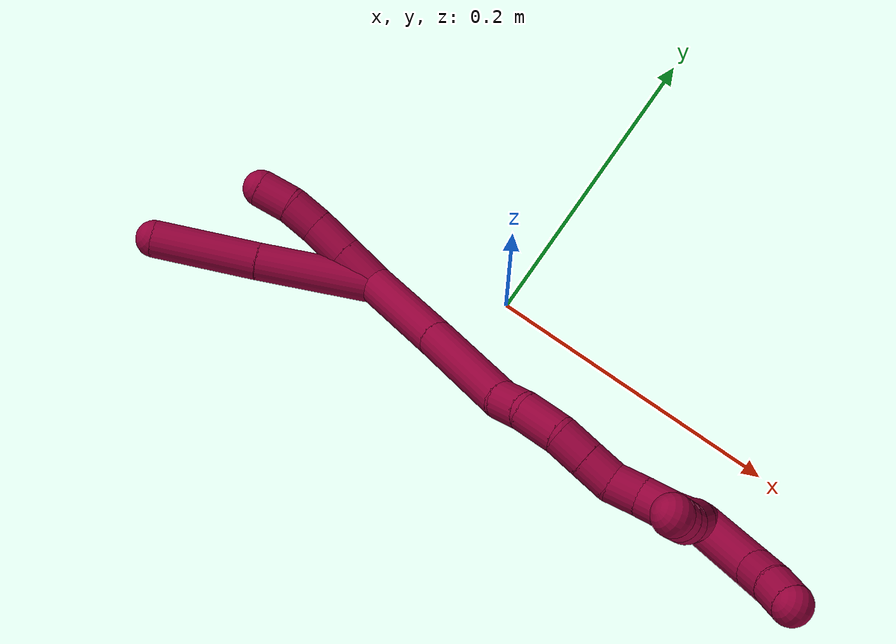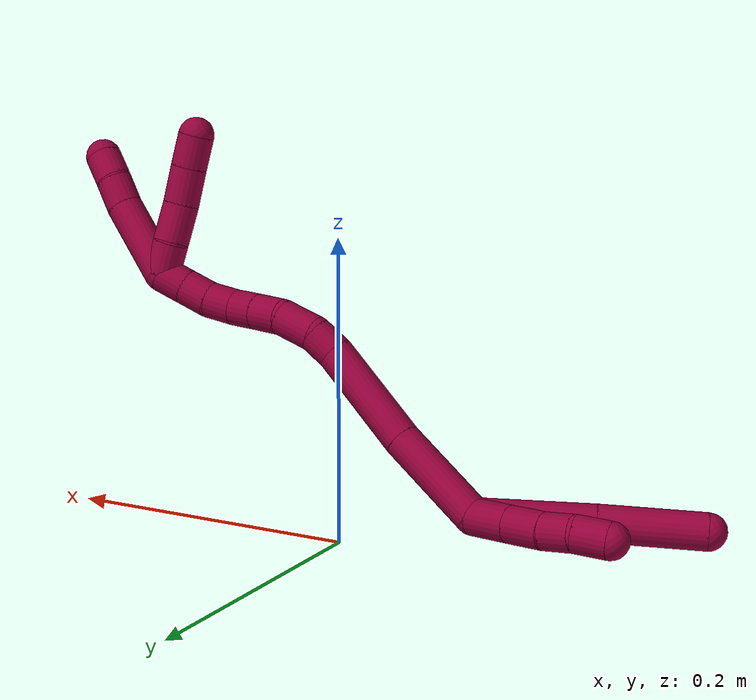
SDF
<sdf version="1.7">
 <world name="default">
  <model name="photoneo_s_sensor">
   <static>1</static>
   <pose>0 0 2 1.57079 1.57079 3.14159</pose>
   <link name="link">
    <inertial><mass>0.1</mass></inertial>
    <sensor name="sensor" type="depth">
     <update_rate>30</update_rate>
     <camera>
      <horizontal_fov>1.22</horizontal_fov>
      <image><width>1920</width><height>1200</height><format>B8G8R8</format></image>
      <clip><near>0.1</near><far>4</far></clip>
      <depth_camera><output>points</output></depth_camera>
     </camera>
     <plugin name="camera_plugin" filename="libgazebo_ros_depth_camera.so">
      <baseline>0.2</baseline>
      <alwaysOn>1</alwaysOn>
      <updateRate>0.0</updateRate>
      <cameraName>camera_ir</cameraName>
      <imageTopicName>/camera/color/image_raw</imageTopicName>
      <cameraInfoTopicName>/camera/color/camera_info</cameraInfoTopicName>
      <depthImageTopicName>/camera/depth/image_raw</depthImageTopicName>
      <depthImageCameraInfoTopicName>/camera/depth/camera_info</depthImageCameraInfoTopicName>
      <pointCloudTopicName>/camera/depth/points</pointCloudTopicName>
      <frameName>fr_optical</frameName>
      <pointCloudCutoff>0.1</pointCloudCutoff>
      <pointCloudCutoffMax>2.0</pointCloudCutoffMax>
      <distortionK1>0</distortionK1>
      <distortionK2>0</distortionK2>
      <distortionK3>0</distortionK3>
      <distortionT1>0</distortionT1>
      <distortionT2>0</distortionT2>
      <CxPrime>0</CxPrime>
      <Cx>0</Cx>
      <Cy>0</Cy>
      <focalLength>0</focalLength>
      <hackBaseline>0</hackBaseline>
     </plugin>
    </sensor>
   </link>
  </model>
  <model name="bin">
   <static>1</static>
   <link name="bottom">
    <collision name="collision-bottom">
     <pose>0 0 -0.01 0 -0 0</pose>
     <geometry><box><size>0.8 0.6 0.02</size></box></geometry>
     <surface>
      <friction><ode><mu>100</mu><mu2>100</mu2></ode></friction>
      <contact><collide_bitmask>65535</collide_bitmask></contact>
     </surface>
    </collision>
   </link>
   <link name="west_wall">
    <collision name="collision-west_wall">
     <pose>-0.41 0 0.1 0 -0 0</pose>
     <geometry><box><size>0.02 0.6 0.2</size></box></geometry>
     <surface>
      <friction><ode><mu>100</mu><mu2>100</mu2></ode></friction>
      <contact><collide_bitmask>65535</collide_bitmask></contact>
     </surface>
    </collision>
   </link>
   <link name="east_wall">
    <collision name="collision-east_wall">
     <pose>0.41 0 0.1 0 -0 0</pose>
     <geometry><box><size>0.02 0.6 0.2</size></box></geometry>
     <surface>
      <friction><ode><mu>100</mu><mu2>100</mu2></ode></friction>
      <contact><collide_bitmask>65535</collide_bitmask></contact>
     </surface>
    </collision>
   </link>
   <link name="south_wall">
    <collision name="collision-south_wall">
     <pose>0 -0.31 0.1 0 -0 0</pose>
     <geometry><box><size>0.8 0.02 0.2</size></box></geometry>
     <surface>
      <friction><ode><mu>100</mu><mu2>100</mu2></ode></friction>
      <contact><collide_bitmask>65535</collide_bitmask></contact>
     </surface>
    </collision>
   </link>
   <link name="north_wall">
    <collision name="collision-north_wall">
     <pose>0 0.31 0.1 0 -0 0</pose>
     <geometry><box><size>0.8 0.02 0.2</size></box></geometry>
     <surface>
      <friction><ode><mu>100</mu><mu2>100</mu2></ode></friction>
      <contact><collide_bitmask>65535</collide_bitmask></contact>
     </surface>
    </collision>
   </link>
  </model>
  <model name="8">
   <static>0</static>
   <link name="8">
    <collision name="collision-cylinder-e_1_2_8">
     <pose>-0.01631 -0.017549 0.031369 0.510047 -0.42597 -0.112641</pose>
     <geometry><cylinder><radius>0.0125</radius><length>0.078942</length></cylinder></geometry>
     <surface>
      <friction><ode><mu>1.16</mu><mu2>1.16</mu2><slip1>0</slip1><slip2>0</slip2></ode></friction>
      <contact><ode><kp>1e+06</kp><kd>1</kd><max_vel>0</max_vel><min_depth>0.001</min_depth></ode></contact>
     </surface>
    </collision>
    <visual name="visual-cylinder-e_1_2_8">
     <pose>-0.01631 -0.017549 0.031369 0.510047 -0.42597 -0.112641</pose>
     <geometry><cylinder><radius>0.0125</radius><length>0.078942</length></cylinder></geometry>
     <material><ambient>0.584314 0 0.227451 1</ambient></material>
    </visual>
    <collision name="collision-cylinder-e_2_8_6">
     <pose>-0.048276 -0.050466 0.090684 0.502805 -0.456361 -0.119147</pose>
     <geometry><cylinder><radius>0.0125</radius><length>0.071058</length></cylinder></geometry>
     <surface>
      <friction><ode><mu>1.16</mu><mu2>1.16</mu2><slip1>0</slip1><slip2>0</slip2></ode></friction>
      <contact><ode><kp>1e+06</kp><kd>1</kd><max_vel>0</max_vel><min_depth>0.001</min_depth></ode></contact>
     </surface>
    </collision>
    <visual name="visual-cylinder-e_2_8_6">
     <pose>-0.048276 -0.050466 0.090684 0.502805 -0.456361 -0.119147</pose>
     <geometry><cylinder><radius>0.0125</radius><length>0.071058</length></cylinder></geometry>
     <material><ambient>0.584314 0 0.227451 1</ambient></material>
    </visual>
    <collision name="collision-cylinder-e_1_2_9">
     <pose>-0.00946 0.001107 0.010947 -0.100771 -0.710124 0.037391</pose>
     <geometry><cylinder><radius>0.0125</radius><length>0.02902</length></cylinder></geometry>
     <surface>
      <friction><ode><mu>1.16</mu><mu2>1.16</mu2><slip1>0</slip1><slip2>0</slip2></ode></friction>
      <contact><ode><kp>1e+06</kp><kd>1</kd><max_vel>0</max_vel><min_depth>0.001</min_depth></ode></contact>
     </surface>
    </collision>
    <visual name="visual-cylinder-e_1_2_9">
     <pose>-0.00946 0.001107 0.010947 -0.100771 -0.710124 0.037391</pose>
     <geometry><cylinder><radius>0.0125</radius><length>0.02902</length></cylinder></geometry>
     <material><ambient>0.584314 0 0.227451 1</ambient></material>
    </visual>
    <collision name="collision-cylinder-e_2_9_10">
     <pose>-0.027359 0.003202 0.031805 -0.099415 -0.702923 0.03648</pose>
     <geometry><cylinder><radius>0.0125</radius><length>0.026111</length></cylinder></geometry>
     <surface>
      <friction><ode><mu>1.16</mu><mu2>1.16</mu2><slip1>0</slip1><slip2>0</slip2></ode></friction>
      <contact><ode><kp>1e+06</kp><kd>1</kd><max_vel>0</max_vel><min_depth>0.001</min_depth></ode></contact>
     </surface>
    </collision>
    <visual name="visual-cylinder-e_2_9_10">
     <pose>-0.027359 0.003202 0.031805 -0.099415 -0.702923 0.03648</pose>
     <geometry><cylinder><radius>0.0125</radius><length>0.026111</length></cylinder></geometry>
     <material><ambient>0.584314 0 0.227451 1</ambient></material>
    </visual>
    <collision name="collision-cylinder-e_3_10_11">
     <pose>-0.041874 0.004527 0.050584 -0.037888 -0.600371 0.011729</pose>
     <geometry><cylinder><radius>0.0125</radius><length>0.021508</length></cylinder></geometry>
     <surface>
      <friction><ode><mu>1.16</mu><mu2>1.16</mu2><slip1>0</slip1><slip2>0</slip2></ode></friction>
      <contact><ode><kp>1e+06</kp><kd>1</kd><max_vel>0</max_vel><min_depth>0.001</min_depth></ode></contact>
     </surface>
    </collision>
    <visual name="visual-cylinder-e_3_10_11">
     <pose>-0.041874 0.004527 0.050584 -0.037888 -0.600371 0.011729</pose>
     <geometry><cylinder><radius>0.0125</radius><length>0.021508</length></cylinder></geometry>
     <material><ambient>0.584314 0 0.227451 1</ambient></material>
    </visual>
    <collision name="collision-cylinder-e_4_11_5">
     <pose>-0.055102 0.002688 0.068425 0.237737 -0.659064 -0.081646</pose>
     <geometry><cylinder><radius>0.0125</radius><length>0.023361</length></cylinder></geometry>
     <surface>
      <friction><ode><mu>1.16</mu><mu2>1.16</mu2><slip1>0</slip1><slip2>0</slip2></ode></friction>
      <contact><ode><kp>1e+06</kp><kd>1</kd><max_vel>0</max_vel><min_depth>0.001</min_depth></ode></contact>
     </surface>
    </collision>
    <visual name="visual-cylinder-e_4_11_5">
     <pose>-0.055102 0.002688 0.068425 0.237737 -0.659064 -0.081646</pose>
     <geometry><cylinder><radius>0.0125</radius><length>0.023361</length></cylinder></geometry>
     <material><ambient>0.584314 0 0.227451 1</ambient></material>
    </visual>
    <collision name="collision-cylinder-e_1_2_12">
     <pose>0.034112 0.005796 -0.010392 -2.63283 1.23517 -2.43975</pose>
     <geometry><cylinder><radius>0.0125</radius><length>0.072255</length></cylinder></geometry>
     <surface>
      <friction><ode><mu>1.16</mu><mu2>1.16</mu2><slip1>0</slip1><slip2>0</slip2></ode></friction>
      <contact><ode><kp>1e+06</kp><kd>1</kd><max_vel>0</max_vel><min_depth>0.001</min_depth></ode></contact>
     </surface>
    </collision>
    <visual name="visual-cylinder-e_1_2_12">
     <pose>0.034112 0.005796 -0.010392 -2.63283 1.23517 -2.43975</pose>
     <geometry><cylinder><radius>0.0125</radius><length>0.072255</length></cylinder></geometry>
     <material><ambient>0.584314 0 0.227451 1</ambient></material>
    </visual>
    <collision name="collision-cylinder-e_2_12_13">
     <pose>0.106034 0.018332 -0.028694 -2.43589 1.30257 -2.24146</pose>
     <geometry><cylinder><radius>0.0125</radius><length>0.078425</length></cylinder></geometry>
     <surface>
      <friction><ode><mu>1.16</mu><mu2>1.16</mu2><slip1>0</slip1><slip2>0</slip2></ode></friction>
      <contact><ode><kp>1e+06</kp><kd>1</kd><max_vel>0</max_vel><min_depth>0.001</min_depth></ode></contact>
     </surface>
    </collision>
    <visual name="visual-cylinder-e_2_12_13">
     <pose>0.106034 0.018332 -0.028694 -2.43589 1.30257 -2.24146</pose>
     <geometry><cylinder><radius>0.0125</radius><length>0.078425</length></cylinder></geometry>
     <material><ambient>0.584314 0 0.227451 1</ambient></material>
    </visual>
    <collision name="collision-cylinder-e_3_13_14">
     <pose>0.152704 0.028747 -0.03954 -2.24487 1.08264 -1.792</pose>
     <geometry><cylinder><radius>0.0125</radius><length>0.020063</length></cylinder></geometry>
     <surface>
      <friction><ode><mu>1.16</mu><mu2>1.16</mu2><slip1>0</slip1><slip2>0</slip2></ode></friction>
      <contact><ode><kp>1e+06</kp><kd>1</kd><max_vel>0</max_vel><min_depth>0.001</min_depth></ode></contact>
     </surface>
    </collision>
    <visual name="visual-cylinder-e_3_13_14">
     <pose>0.152704 0.028747 -0.03954 -2.24487 1.08264 -1.792</pose>
     <geometry><cylinder><radius>0.0125</radius><length>0.020063</length></cylinder></geometry>
     <material><ambient>0.584314 0 0.227451 1</ambient></material>
    </visual>
    <collision name="collision-cylinder-e_4_14_15">
     <pose>0.172543 0.035008 -0.050155 -2.8169 0.935116 -2.51422</pose>
     <geometry><cylinder><radius>0.0125</radius><length>0.02729</length></cylinder></geometry>
     <surface>
      <friction><ode><mu>1.16</mu><mu2>1.16</mu2><slip1>0</slip1><slip2>0</slip2></ode></friction>
      <contact><ode><kp>1e+06</kp><kd>1</kd><max_vel>0</max_vel><min_depth>0.001</min_depth></ode></contact>
     </surface>
    </collision>
    <visual name="visual-cylinder-e_4_14_15">
     <pose>0.172543 0.035008 -0.050155 -2.8169 0.935116 -2.51422</pose>
     <geometry><cylinder><radius>0.0125</radius><length>0.02729</length></cylinder></geometry>
     <material><ambient>0.584314 0 0.227451 1</ambient></material>
    </visual>
    <collision name="collision-cylinder-e_5_15_16">
     <pose>0.190949 0.037377 -0.065706 3.11424 0.756045 3.07273</pose>
     <geometry><cylinder><radius>0.0125</radius><length>0.02165</length></cylinder></geometry>
     <surface>
      <friction><ode><mu>1.16</mu><mu2>1.16</mu2><slip1>0</slip1><slip2>0</slip2></ode></friction>
      <contact><ode><kp>1e+06</kp><kd>1</kd><max_vel>0</max_vel><min_depth>0.001</min_depth></ode></contact>
     </surface>
    </collision>
    <visual name="visual-cylinder-e_5_15_16">
     <pose>0.190949 0.037377 -0.065706 3.11424 0.756045 3.07273</pose>
     <geometry><cylinder><radius>0.0125</radius><length>0.02165</length></cylinder></geometry>
     <material><ambient>0.584314 0 0.227451 1</ambient></material>
    </visual>
    <collision name="collision-cylinder-e_6_16_17">
     <pose>0.205176 0.036955 -0.081014 3.11384 0.740638 3.07014</pose>
     <geometry><cylinder><radius>0.0125</radius><length>0.020156</length></cylinder></geometry>
     <surface>
      <friction><ode><mu>1.16</mu><mu2>1.16</mu2><slip1>0</slip1><slip2>0</slip2></ode></friction>
      <contact><ode><kp>1e+06</kp><kd>1</kd><max_vel>0</max_vel><min_depth>0.001</min_depth></ode></contact>
     </surface>
    </collision>
    <visual name="visual-cylinder-e_6_16_17">
     <pose>0.205176 0.036955 -0.081014 3.11384 0.740638 3.07014</pose>
     <geometry><cylinder><radius>0.0125</radius><length>0.020156</length></cylinder></geometry>
     <material><ambient>0.584314 0 0.227451 1</ambient></material>
    </visual>
    <collision name="collision-cylinder-e_7_17_18">
     <pose>0.218719 0.039644 -0.095335 -2.74349 0.734244 -2.17539</pose>
     <geometry><cylinder><radius>0.0125</radius><length>0.020126</length></cylinder></geometry>
     <surface>
      <friction><ode><mu>1.16</mu><mu2>1.16</mu2><slip1>0</slip1><slip2>0</slip2></ode></friction>
      <contact><ode><kp>1e+06</kp><kd>1</kd><max_vel>0</max_vel><min_depth>0.001</min_depth></ode></contact>
     </surface>
    </collision>
    <visual name="visual-cylinder-e_7_17_18">
     <pose>0.218719 0.039644 -0.095335 -2.74349 0.734244 -2.17539</pose>
     <geometry><cylinder><radius>0.0125</radius><length>0.020126</length></cylinder></geometry>
     <material><ambient>0.584314 0 0.227451 1</ambient></material>
    </visual>
    <collision name="collision-cylinder-e_8_18_19">
     <pose>0.233371 0.045631 -0.107529 -2.61442 0.910525 -2.13401</pose>
     <geometry><cylinder><radius>0.0125</radius><length>0.02003</length></cylinder></geometry>
     <surface>
      <friction><ode><mu>1.16</mu><mu2>1.16</mu2><slip1>0</slip1><slip2>0</slip2></ode></friction>
      <contact><ode><kp>1e+06</kp><kd>1</kd><max_vel>0</max_vel><min_depth>0.001</min_depth></ode></contact>
     </surface>
    </collision>
    <visual name="visual-cylinder-e_8_18_19">
     <pose>0.233371 0.045631 -0.107529 -2.61442 0.910525 -2.13401</pose>
     <geometry><cylinder><radius>0.0125</radius><length>0.02003</length></cylinder></geometry>
     <material><ambient>0.584314 0 0.227451 1</ambient></material>
    </visual>
    <collision name="collision-cylinder-e_9_19_1">
     <pose>0.24894 0.052687 -0.117904 -2.47731 0.872105 -1.86717</pose>
     <geometry><cylinder><radius>0.0125</radius><length>0.020005</length></cylinder></geometry>
     <surface>
      <friction><ode><mu>1.16</mu><mu2>1.16</mu2><slip1>0</slip1><slip2>0</slip2></ode></friction>
      <contact><ode><kp>1e+06</kp><kd>1</kd><max_vel>0</max_vel><min_depth>0.001</min_depth></ode></contact>
     </surface>
    </collision>
    <visual name="visual-cylinder-e_9_19_1">
     <pose>0.24894 0.052687 -0.117904 -2.47731 0.872105 -1.86717</pose>
     <geometry><cylinder><radius>0.0125</radius><length>0.020005</length></cylinder></geometry>
     <material><ambient>0.584314 0 0.227451 1</ambient></material>
    </visual>
    <collision name="collision-cylinder-e_1_1_20">
     <pose>0.284935 0.063248 -0.124578 -1.81 1.33569 -1.57501</pose>
     <geometry><cylinder><radius>0.0125</radius><length>0.058275</length></cylinder></geometry>
     <surface>
      <friction><ode><mu>1.16</mu><mu2>1.16</mu2><slip1>0</slip1><slip2>0</slip2></ode></friction>
      <contact><ode><kp>1e+06</kp><kd>1</kd><max_vel>0</max_vel><min_depth>0.001</min_depth></ode></contact>
     </surface>
    </collision>
    <visual name="visual-cylinder-e_1_1_20">
     <pose>0.284935 0.063248 -0.124578 -1.81 1.33569 -1.57501</pose>
     <geometry><cylinder><radius>0.0125</radius><length>0.058275</length></cylinder></geometry>
     <material><ambient>0.584314 0 0.227451 1</ambient></material>
    </visual>
    <collision name="collision-cylinder-e_2_20_21">
     <pose>0.323573 0.072568 -0.125298 -1.25599 1.29943 -1.00816</pose>
     <geometry><cylinder><radius>0.0125</radius><length>0.021387</length></cylinder></geometry>
     <surface>
      <friction><ode><mu>1.16</mu><mu2>1.16</mu2><slip1>0</slip1><slip2>0</slip2></ode></friction>
      <contact><ode><kp>1e+06</kp><kd>1</kd><max_vel>0</max_vel><min_depth>0.001</min_depth></ode></contact>
     </surface>
    </collision>
    <visual name="visual-cylinder-e_2_20_21">
     <pose>0.323573 0.072568 -0.125298 -1.25599 1.29943 -1.00816</pose>
     <geometry><cylinder><radius>0.0125</radius><length>0.021387</length></cylinder></geometry>
     <material><ambient>0.584314 0 0.227451 1</ambient></material>
    </visual>
    <collision name="collision-cylinder-e_3_21_4">
     <pose>0.34392 0.07688 -0.124312 -1.50885 1.41386 -1.35297</pose>
     <geometry><cylinder><radius>0.0125</radius><length>0.020338</length></cylinder></geometry>
     <surface>
      <friction><ode><mu>1.16</mu><mu2>1.16</mu2><slip1>0</slip1><slip2>0</slip2></ode></friction>
      <contact><ode><kp>1e+06</kp><kd>1</kd><max_vel>0</max_vel><min_depth>0.001</min_depth></ode></contact>
     </surface>
    </collision>
    <visual name="visual-cylinder-e_3_21_4">
     <pose>0.34392 0.07688 -0.124312 -1.50885 1.41386 -1.35297</pose>
     <geometry><cylinder><radius>0.0125</radius><length>0.020338</length></cylinder></geometry>
     <material><ambient>0.584314 0 0.227451 1</ambient></material>
    </visual>
    <collision name="collision-cylinder-e_1_1_22">
     <pose>0.263355 0.059704 -0.114132 -0.332341 0.625723 -0.108402</pose>
     <geometry><cylinder><radius>0.0125</radius><length>0.023068</length></cylinder></geometry>
     <surface>
      <friction><ode><mu>1.16</mu><mu2>1.16</mu2><slip1>0</slip1><slip2>0</slip2></ode></friction>
      <contact><ode><kp>1e+06</kp><kd>1</kd><max_vel>0</max_vel><min_depth>0.001</min_depth></ode></contact>
     </surface>
    </collision>
    <visual name="visual-cylinder-e_1_1_22">
     <pose>0.263355 0.059704 -0.114132 -0.332341 0.625723 -0.108402</pose>
     <geometry><cylinder><radius>0.0125</radius><length>0.023068</length></cylinder></geometry>
     <material><ambient>0.584314 0 0.227451 1</ambient></material>
    </visual>
    <collision name="collision-cylinder-e_2_22_23">
     <pose>0.279454 0.064876 -0.09543 -0.211853 0.747026 -0.083291</pose>
     <geometry><cylinder><radius>0.0125</radius><length>0.027504</length></cylinder></geometry>
     <surface>
      <friction><ode><mu>1.16</mu><mu2>1.16</mu2><slip1>0</slip1><slip2>0</slip2></ode></friction>
      <contact><ode><kp>1e+06</kp><kd>1</kd><max_vel>0</max_vel><min_depth>0.001</min_depth></ode></contact>
     </surface>
    </collision>
    <visual name="visual-cylinder-e_2_22_23">
     <pose>0.279454 0.064876 -0.09543 -0.211853 0.747026 -0.083291</pose>
     <geometry><cylinder><radius>0.0125</radius><length>0.027504</length></cylinder></geometry>
     <material><ambient>0.584314 0 0.227451 1</ambient></material>
    </visual>
    <collision name="collision-cylinder-e_3_23_24">
     <pose>0.29713 0.07072 -0.076003 -0.37121 0.681997 -0.133065</pose>
     <geometry><cylinder><radius>0.0125</radius><length>0.026437</length></cylinder></geometry>
     <surface>
      <friction><ode><mu>1.16</mu><mu2>1.16</mu2><slip1>0</slip1><slip2>0</slip2></ode></friction>
      <contact><ode><kp>1e+06</kp><kd>1</kd><max_vel>0</max_vel><min_depth>0.001</min_depth></ode></contact>
     </surface>
    </collision>
    <visual name="visual-cylinder-e_3_23_24">
     <pose>0.29713 0.07072 -0.076003 -0.37121 0.681997 -0.133065</pose>
     <geometry><cylinder><radius>0.0125</radius><length>0.026437</length></cylinder></geometry>
     <material><ambient>0.584314 0 0.227451 1</ambient></material>
    </visual>
    <collision name="collision-cylinder-e_4_24_3">
     <pose>0.312447 0.07774 -0.057926 -0.369546 0.653012 -0.126413</pose>
     <geometry><cylinder><radius>0.0125</radius><length>0.022991</length></cylinder></geometry>
     <surface>
      <friction><ode><mu>1.16</mu><mu2>1.16</mu2><slip1>0</slip1><slip2>0</slip2></ode></friction>
      <contact><ode><kp>1e+06</kp><kd>1</kd><max_vel>0</max_vel><min_depth>0.001</min_depth></ode></contact>
     </surface>
    </collision>
    <visual name="visual-cylinder-e_4_24_3">
     <pose>0.312447 0.07774 -0.057926 -0.369546 0.653012 -0.126413</pose>
     <geometry><cylinder><radius>0.0125</radius><length>0.022991</length></cylinder></geometry>
     <material><ambient>0.584314 0 0.227451 1</ambient></material>
    </visual>
    <collision name="collision-sphere-3">
     <pose>0.319431 0.081038 -0.049413 0 -0 0</pose>
     <geometry><sphere><radius>0.0125</radius></sphere></geometry>
     <surface>
      <friction><ode><mu>1.16</mu><mu2>1.16</mu2><slip1>0</slip1><slip2>0</slip2></ode></friction>
      <contact><ode><kp>1e+06</kp><kd>1</kd><max_vel>0</max_vel><min_depth>0.001</min_depth></ode></contact>
     </surface>
    </collision>
    <visual name="visual-sphere-3">
     <pose>0.319431 0.081038 -0.049413 0 -0 0</pose>
     <geometry><sphere><radius>0.0125</radius></sphere></geometry>
     <material><ambient>0.584314 0 0.227451 1</ambient></material>
    </visual>
    <collision name="collision-sphere-24">
     <pose>0.305462 0.074442 -0.06644 0 -0 0</pose>
     <geometry><sphere><radius>0.0125</radius></sphere></geometry>
     <surface>
      <friction><ode><mu>1.16</mu><mu2>1.16</mu2><slip1>0</slip1><slip2>0</slip2></ode></friction>
      <contact><ode><kp>1e+06</kp><kd>1</kd><max_vel>0</max_vel><min_depth>0.001</min_depth></ode></contact>
     </surface>
    </collision>
    <visual name="visual-sphere-24">
     <pose>0.305462 0.074442 -0.06644 0 -0 0</pose>
     <geometry><sphere><radius>0.0125</radius></sphere></geometry>
     <material><ambient>0.584314 0 0.227451 1</ambient></material>
    </visual>
    <collision name="collision-sphere-23">
     <pose>0.288798 0.066997 -0.085566 0 -0 0</pose>
     <geometry><sphere><radius>0.0125</radius></sphere></geometry>
     <surface>
      <friction><ode><mu>1.16</mu><mu2>1.16</mu2><slip1>0</slip1><slip2>0</slip2></ode></friction>
      <contact><ode><kp>1e+06</kp><kd>1</kd><max_vel>0</max_vel><min_depth>0.001</min_depth></ode></contact>
     </surface>
    </collision>
    <visual name="visual-sphere-23">
     <pose>0.288798 0.066997 -0.085566 0 -0 0</pose>
     <geometry><sphere><radius>0.0125</radius></sphere></geometry>
     <material><ambient>0.584314 0 0.227451 1</ambient></material>
    </visual>
    <collision name="collision-sphere-22">
     <pose>0.27011 0.062754 -0.105295 0 -0 0</pose>
     <geometry><sphere><radius>0.0125</radius></sphere></geometry>
     <surface>
      <friction><ode><mu>1.16</mu><mu2>1.16</mu2><slip1>0</slip1><slip2>0</slip2></ode></friction>
      <contact><ode><kp>1e+06</kp><kd>1</kd><max_vel>0</max_vel><min_depth>0.001</min_depth></ode></contact>
     </surface>
    </collision>
    <visual name="visual-sphere-22">
     <pose>0.27011 0.062754 -0.105295 0 -0 0</pose>
     <geometry><sphere><radius>0.0125</radius></sphere></geometry>
     <material><ambient>0.584314 0 0.227451 1</ambient></material>
    </visual>
    <collision name="collision-sphere-4">
     <pose>0.353964 0.078466 -0.124214 0 -0 0</pose>
     <geometry><sphere><radius>0.0125</radius></sphere></geometry>
     <surface>
      <friction><ode><mu>1.16</mu><mu2>1.16</mu2><slip1>0</slip1><slip2>0</slip2></ode></friction>
      <contact><ode><kp>1e+06</kp><kd>1</kd><max_vel>0</max_vel><min_depth>0.001</min_depth></ode></contact>
     </surface>
    </collision>
    <visual name="visual-sphere-4">
     <pose>0.353964 0.078466 -0.124214 0 -0 0</pose>
     <geometry><sphere><radius>0.0125</radius></sphere></geometry>
     <material><ambient>0.584314 0 0.227451 1</ambient></material>
    </visual>
    <collision name="collision-sphere-21">
     <pose>0.333876 0.075293 -0.124411 0 -0 0</pose>
     <geometry><sphere><radius>0.0125</radius></sphere></geometry>
     <surface>
      <friction><ode><mu>1.16</mu><mu2>1.16</mu2><slip1>0</slip1><slip2>0</slip2></ode></friction>
      <contact><ode><kp>1e+06</kp><kd>1</kd><max_vel>0</max_vel><min_depth>0.001</min_depth></ode></contact>
     </surface>
    </collision>
    <visual name="visual-sphere-21">
     <pose>0.333876 0.075293 -0.124411 0 -0 0</pose>
     <geometry><sphere><radius>0.0125</radius></sphere></geometry>
     <material><ambient>0.584314 0 0.227451 1</ambient></material>
    </visual>
    <collision name="collision-sphere-20">
     <pose>0.313271 0.069842 -0.126186 0 -0 0</pose>
     <geometry><sphere><radius>0.0125</radius></sphere></geometry>
     <surface>
      <friction><ode><mu>1.16</mu><mu2>1.16</mu2><slip1>0</slip1><slip2>0</slip2></ode></friction>
      <contact><ode><kp>1e+06</kp><kd>1</kd><max_vel>0</max_vel><min_depth>0.001</min_depth></ode></contact>
     </surface>
    </collision>
    <visual name="visual-sphere-20">
     <pose>0.313271 0.069842 -0.126186 0 -0 0</pose>
     <geometry><sphere><radius>0.0125</radius></sphere></geometry>
     <material><ambient>0.584314 0 0.227451 1</ambient></material>
    </visual>
    <collision name="collision-sphere-11">
     <pose>-0.047949 0.004863 0.059451 0 -0 0</pose>
     <geometry><sphere><radius>0.0125</radius></sphere></geometry>
     <surface>
      <friction><ode><mu>1.16</mu><mu2>1.16</mu2><slip1>0</slip1><slip2>0</slip2></ode></friction>
      <contact><ode><kp>1e+06</kp><kd>1</kd><max_vel>0</max_vel><min_depth>0.001</min_depth></ode></contact>
     </surface>
    </collision>
    <visual name="visual-sphere-11">
     <pose>-0.047949 0.004863 0.059451 0 -0 0</pose>
     <geometry><sphere><radius>0.0125</radius></sphere></geometry>
     <material><ambient>0.584314 0 0.227451 1</ambient></material>
    </visual>
    <collision name="collision-sphere-10">
     <pose>-0.035798 0.004191 0.041717 0 -0 0</pose>
     <geometry><sphere><radius>0.0125</radius></sphere></geometry>
     <surface>
      <friction><ode><mu>1.16</mu><mu2>1.16</mu2><slip1>0</slip1><slip2>0</slip2></ode></friction>
      <contact><ode><kp>1e+06</kp><kd>1</kd><max_vel>0</max_vel><min_depth>0.001</min_depth></ode></contact>
     </surface>
    </collision>
    <visual name="visual-sphere-10">
     <pose>-0.035798 0.004191 0.041717 0 -0 0</pose>
     <geometry><sphere><radius>0.0125</radius></sphere></geometry>
     <material><ambient>0.584314 0 0.227451 1</ambient></material>
    </visual>
    <collision name="collision-sphere-6">
     <pose>-0.063933 -0.065834 0.118629 0 -0 0</pose>
     <geometry><sphere><radius>0.0125</radius></sphere></geometry>
     <surface>
      <friction><ode><mu>1.16</mu><mu2>1.16</mu2><slip1>0</slip1><slip2>0</slip2></ode></friction>
      <contact><ode><kp>1e+06</kp><kd>1</kd><max_vel>0</max_vel><min_depth>0.001</min_depth></ode></contact>
     </surface>
    </collision>
    <visual name="visual-sphere-6">
     <pose>-0.063933 -0.065834 0.118629 0 -0 0</pose>
     <geometry><sphere><radius>0.0125</radius></sphere></geometry>
     <material><ambient>0.584314 0 0.227451 1</ambient></material>
    </visual>
    <collision name="collision-sphere-9">
     <pose>-0.018919 0.002214 0.021894 0 -0 0</pose>
     <geometry><sphere><radius>0.0125</radius></sphere></geometry>
     <surface>
      <friction><ode><mu>1.16</mu><mu2>1.16</mu2><slip1>0</slip1><slip2>0</slip2></ode></friction>
      <contact><ode><kp>1e+06</kp><kd>1</kd><max_vel>0</max_vel><min_depth>0.001</min_depth></ode></contact>
     </surface>
    </collision>
    <visual name="visual-sphere-9">
     <pose>-0.018919 0.002214 0.021894 0 -0 0</pose>
     <geometry><sphere><radius>0.0125</radius></sphere></geometry>
     <material><ambient>0.584314 0 0.227451 1</ambient></material>
    </visual>
    <collision name="collision-sphere-2">
     <geometry><sphere><radius>0.0125</radius></sphere></geometry>
     <surface>
      <friction><ode><mu>1.16</mu><mu2>1.16</mu2><slip1>0</slip1><slip2>0</slip2></ode></friction>
      <contact><ode><kp>1e+06</kp><kd>1</kd><max_vel>0</max_vel><min_depth>0.001</min_depth></ode></contact>
     </surface>
    </collision>
    <visual name="visual-sphere-2">
     <geometry><sphere><radius>0.0125</radius></sphere></geometry>
     <material><ambient>0.584314 0 0.227451 1</ambient></material>
    </visual>
    <collision name="collision-sphere-19">
     <pose>0.241282 0.048721 -0.112838 0 -0 0</pose>
     <geometry><sphere><radius>0.0125</radius></sphere></geometry>
     <surface>
      <friction><ode><mu>1.16</mu><mu2>1.16</mu2><slip1>0</slip1><slip2>0</slip2></ode></friction>
      <contact><ode><kp>1e+06</kp><kd>1</kd><max_vel>0</max_vel><min_depth>0.001</min_depth></ode></contact>
     </surface>
    </collision>
    <visual name="visual-sphere-19">
     <pose>0.241282 0.048721 -0.112838 0 -0 0</pose>
     <geometry><sphere><radius>0.0125</radius></sphere></geometry>
     <material><ambient>0.584314 0 0.227451 1</ambient></material>
    </visual>
    <collision name="collision-sphere-8">
     <pose>-0.032619 -0.035097 0.062738 0 -0 0</pose>
     <geometry><sphere><radius>0.0125</radius></sphere></geometry>
     <surface>
      <friction><ode><mu>1.16</mu><mu2>1.16</mu2><slip1>0</slip1><slip2>0</slip2></ode></friction>
      <contact><ode><kp>1e+06</kp><kd>1</kd><max_vel>0</max_vel><min_depth>0.001</min_depth></ode></contact>
     </surface>
    </collision>
    <visual name="visual-sphere-8">
     <pose>-0.032619 -0.035097 0.062738 0 -0 0</pose>
     <geometry><sphere><radius>0.0125</radius></sphere></geometry>
     <material><ambient>0.584314 0 0.227451 1</ambient></material>
    </visual>
    <collision name="collision-sphere-5">
     <pose>-0.062255 0.000514 0.0774 0 -0 0</pose>
     <geometry><sphere><radius>0.0125</radius></sphere></geometry>
     <surface>
      <friction><ode><mu>1.16</mu><mu2>1.16</mu2><slip1>0</slip1><slip2>0</slip2></ode></friction>
      <contact><ode><kp>1e+06</kp><kd>1</kd><max_vel>0</max_vel><min_depth>0.001</min_depth></ode></contact>
     </surface>
    </collision>
    <visual name="visual-sphere-5">
     <pose>-0.062255 0.000514 0.0774 0 -0 0</pose>
     <geometry><sphere><radius>0.0125</radius></sphere></geometry>
     <material><ambient>0.584314 0 0.227451 1</ambient></material>
    </visual>
    <collision name="collision-sphere-12">
     <pose>0.068224 0.011592 -0.020784 0 -0 0</pose>
     <geometry><sphere><radius>0.0125</radius></sphere></geometry>
     <surface>
      <friction><ode><mu>1.16</mu><mu2>1.16</mu2><slip1>0</slip1><slip2>0</slip2></ode></friction>
      <contact><ode><kp>1e+06</kp><kd>1</kd><max_vel>0</max_vel><min_depth>0.001</min_depth></ode></contact>
     </surface>
    </collision>
    <visual name="visual-sphere-12">
     <pose>0.068224 0.011592 -0.020784 0 -0 0</pose>
     <geometry><sphere><radius>0.0125</radius></sphere></geometry>
     <material><ambient>0.584314 0 0.227451 1</ambient></material>
    </visual>
    <collision name="collision-sphere-13">
     <pose>0.143844 0.025072 -0.036604 0 -0 0</pose>
     <geometry><sphere><radius>0.0125</radius></sphere></geometry>
     <surface>
      <friction><ode><mu>1.16</mu><mu2>1.16</mu2><slip1>0</slip1><slip2>0</slip2></ode></friction>
      <contact><ode><kp>1e+06</kp><kd>1</kd><max_vel>0</max_vel><min_depth>0.001</min_depth></ode></contact>
     </surface>
    </collision>
    <visual name="visual-sphere-13">
     <pose>0.143844 0.025072 -0.036604 0 -0 0</pose>
     <geometry><sphere><radius>0.0125</radius></sphere></geometry>
     <material><ambient>0.584314 0 0.227451 1</ambient></material>
    </visual>
    <collision name="collision-sphere-14">
     <pose>0.161563 0.032423 -0.042477 0 -0 0</pose>
     <geometry><sphere><radius>0.0125</radius></sphere></geometry>
     <surface>
      <friction><ode><mu>1.16</mu><mu2>1.16</mu2><slip1>0</slip1><slip2>0</slip2></ode></friction>
      <contact><ode><kp>1e+06</kp><kd>1</kd><max_vel>0</max_vel><min_depth>0.001</min_depth></ode></contact>
     </surface>
    </collision>
    <visual name="visual-sphere-14">
     <pose>0.161563 0.032423 -0.042477 0 -0 0</pose>
     <geometry><sphere><radius>0.0125</radius></sphere></geometry>
     <material><ambient>0.584314 0 0.227451 1</ambient></material>
    </visual>
    <collision name="collision-sphere-15">
     <pose>0.183523 0.037592 -0.057833 0 -0 0</pose>
     <geometry><sphere><radius>0.0125</radius></sphere></geometry>
     <surface>
      <friction><ode><mu>1.16</mu><mu2>1.16</mu2><slip1>0</slip1><slip2>0</slip2></ode></friction>
      <contact><ode><kp>1e+06</kp><kd>1</kd><max_vel>0</max_vel><min_depth>0.001</min_depth></ode></contact>
     </surface>
    </collision>
    <visual name="visual-sphere-15">
     <pose>0.183523 0.037592 -0.057833 0 -0 0</pose>
     <geometry><sphere><radius>0.0125</radius></sphere></geometry>
     <material><ambient>0.584314 0 0.227451 1</ambient></material>
    </visual>
    <collision name="collision-sphere-16">
     <pose>0.198376 0.037161 -0.073579 0 -0 0</pose>
     <geometry><sphere><radius>0.0125</radius></sphere></geometry>
     <surface>
      <friction><ode><mu>1.16</mu><mu2>1.16</mu2><slip1>0</slip1><slip2>0</slip2></ode></friction>
      <contact><ode><kp>1e+06</kp><kd>1</kd><max_vel>0</max_vel><min_depth>0.001</min_depth></ode></contact>
     </surface>
    </collision>
    <visual name="visual-sphere-16">
     <pose>0.198376 0.037161 -0.073579 0 -0 0</pose>
     <geometry><sphere><radius>0.0125</radius></sphere></geometry>
     <material><ambient>0.584314 0 0.227451 1</ambient></material>
    </visual>
    <collision name="collision-sphere-17">
     <pose>0.211976 0.036748 -0.088449 0 -0 0</pose>
     <geometry><sphere><radius>0.0125</radius></sphere></geometry>
     <surface>
      <friction><ode><mu>1.16</mu><mu2>1.16</mu2><slip1>0</slip1><slip2>0</slip2></ode></friction>
      <contact><ode><kp>1e+06</kp><kd>1</kd><max_vel>0</max_vel><min_depth>0.001</min_depth></ode></contact>
     </surface>
    </collision>
    <visual name="visual-sphere-17">
     <pose>0.211976 0.036748 -0.088449 0 -0 0</pose>
     <geometry><sphere><radius>0.0125</radius></sphere></geometry>
     <material><ambient>0.584314 0 0.227451 1</ambient></material>
    </visual>
    <collision name="collision-sphere-18">
     <pose>0.225461 0.04254 -0.102221 0 -0 0</pose>
     <geometry><sphere><radius>0.0125</radius></sphere></geometry>
     <surface>
      <friction><ode><mu>1.16</mu><mu2>1.16</mu2><slip1>0</slip1><slip2>0</slip2></ode></friction>
      <contact><ode><kp>1e+06</kp><kd>1</kd><max_vel>0</max_vel><min_depth>0.001</min_depth></ode></contact>
     </surface>
    </collision>
    <visual name="visual-sphere-18">
     <pose>0.225461 0.04254 -0.102221 0 -0 0</pose>
     <geometry><sphere><radius>0.0125</radius></sphere></geometry>
     <material><ambient>0.584314 0 0.227451 1</ambient></material>
    </visual>
    <collision name="collision-sphere-1">
     <pose>0.256599 0.056654 -0.122969 0 -0 0</pose>
     <geometry><sphere><radius>0.0125</radius></sphere></geometry>
     <surface>
      <friction><ode><mu>1.16</mu><mu2>1.16</mu2><slip1>0</slip1><slip2>0</slip2></ode></friction>
      <contact><ode><kp>1e+06</kp><kd>1</kd><max_vel>0</max_vel><min_depth>0.001</min_depth></ode></contact>
     </surface>
    </collision>
    <visual name="visual-sphere-1">
     <pose>0.256599 0.056654 -0.122969 0 -0 0</pose>
     <geometry><sphere><radius>0.0125</radius></sphere></geometry>
     <material><ambient>0.584314 0 0.227451 1</ambient></material>
    </visual>
    <inertial>
     <pose>0.123071 0.022177 -0.030615 0 -0 0</pose>
     <mass>0.75</mass>
     <inertia>
      <ixx>5.1e-05</ixx>
      <ixy>0</ixy>
      <ixz>0</ixz>
      <iyy>0.000161</iyy>
      <iyz>0</iyz>
      <izz>-4.9e-05</izz>
     </inertia>
    </inertial>
   </link>
   <pose>-0.076466 -0.040613 0.018142 0.66164 -0.754431 -0.591367</pose>
  </model>
 </world>
</sdf>
